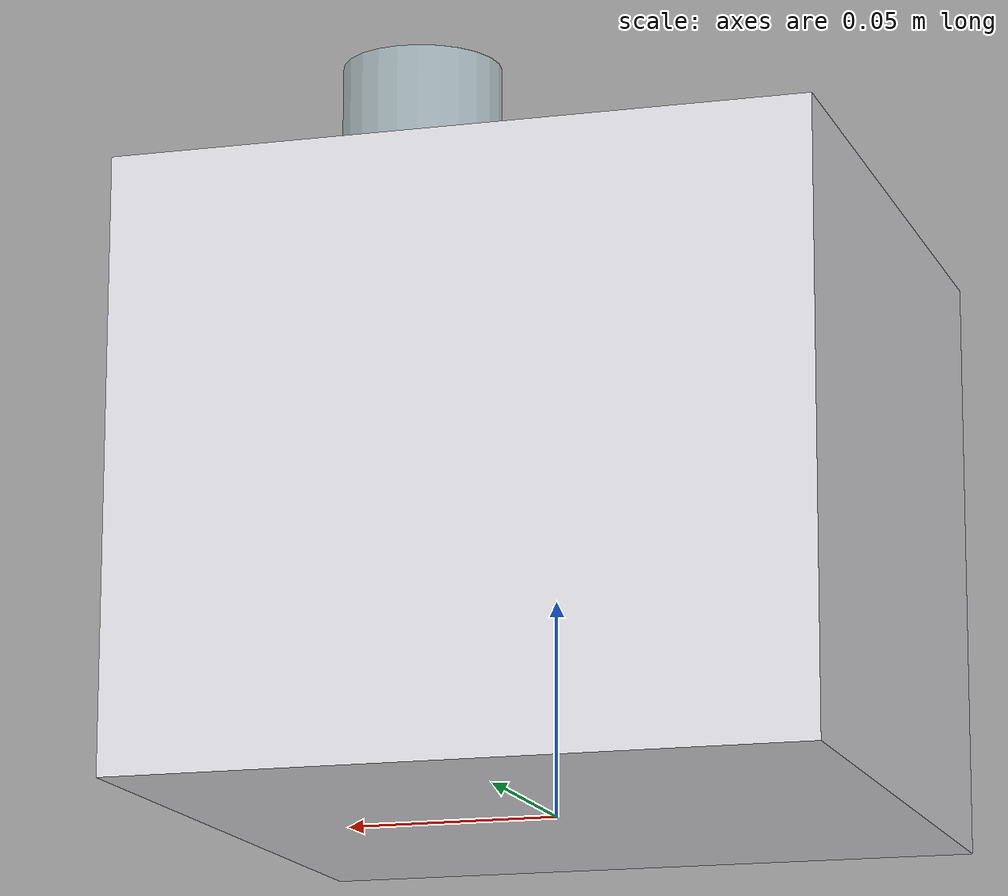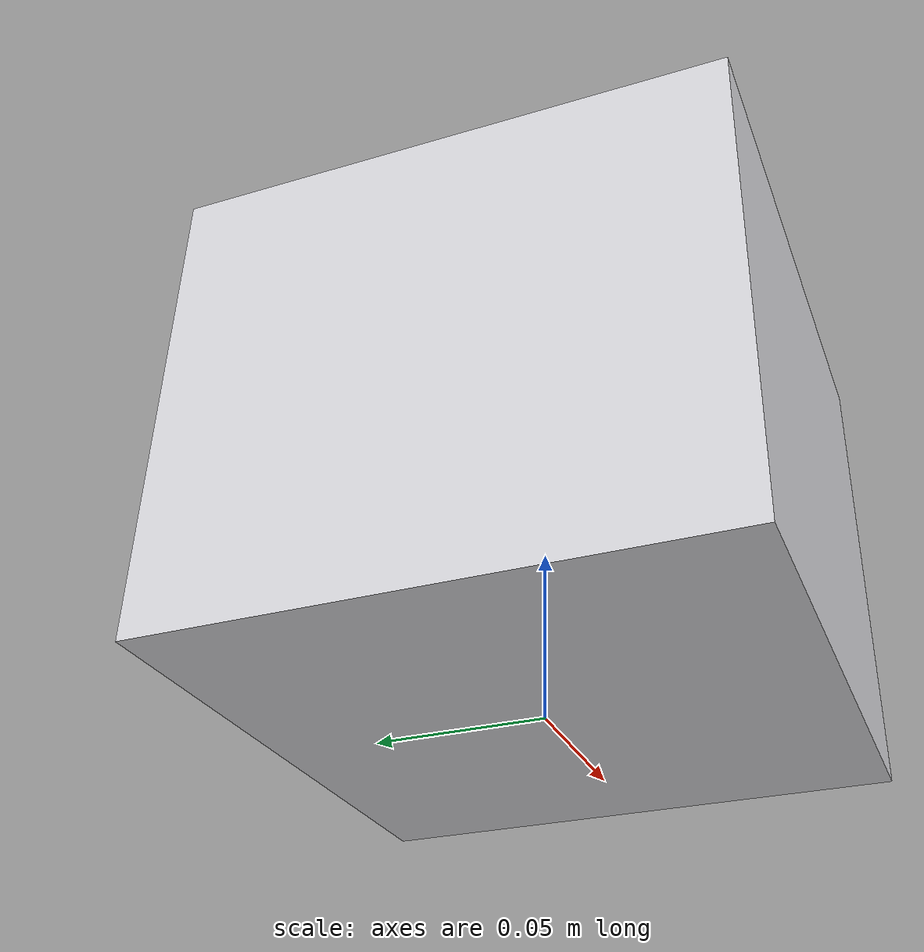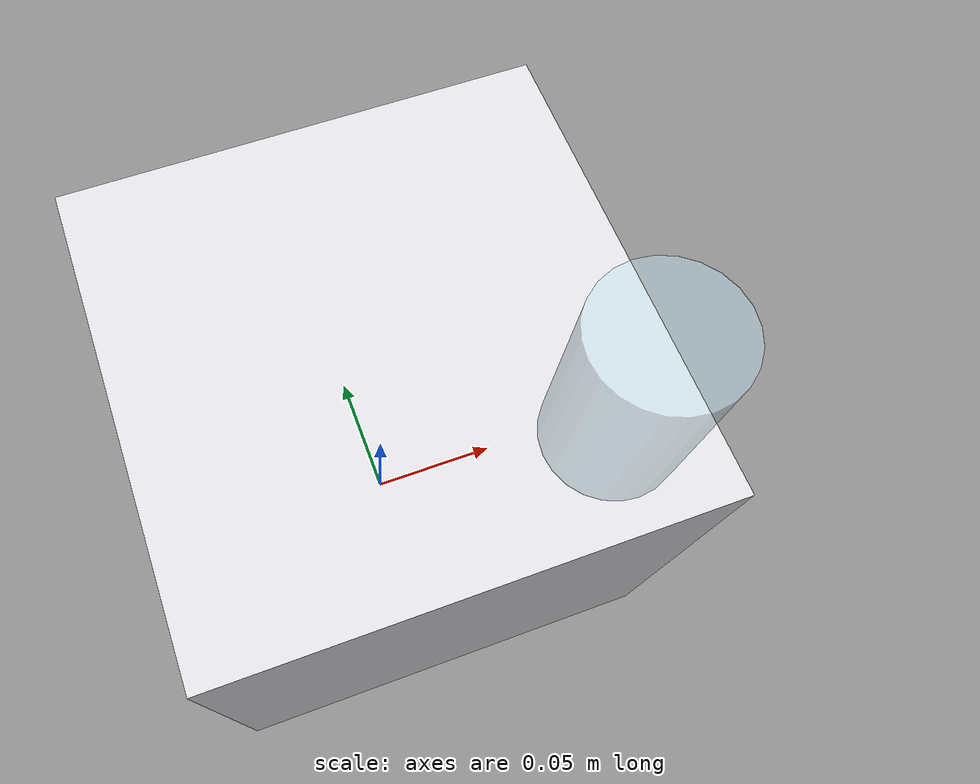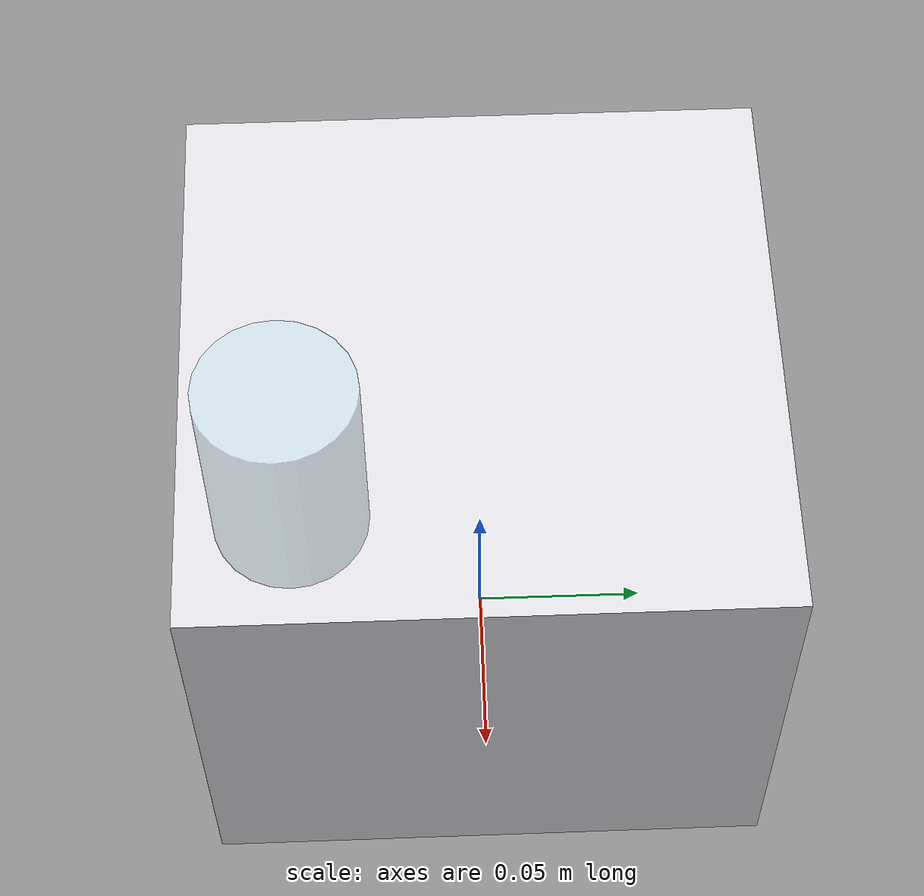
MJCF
<?xml version="1.0" encoding="utf-8"?>
<mujoco model="karl_fischer_titrator">
  <compiler angle="radian" autolimits="true"/>
  <default>
    <default class="body"><geom contype="1" conaffinity="1"/></default>
  </default>
  <worldbody>
    <body name="base">
      <geom type="box" size="0.08 0.08 0.07" pos="0 0 0.07" rgba="0.85 0.85 0.87 1" class="body"/>
      <geom type="box" size="0.024 0.004 0.0175" pos="-0.04 -0.07200000000000001 0.10500000000000001" rgba="0.6 0.9 0.9 0.7" class="body"/>
      <body name="burette_unit" pos="0.05 -0.05 0.17">
        <joint name="burette_unit_joint" type="slide" axis="0 0 1" range="-0.02 0.02" damping="1.0" frictionloss="0.5"/>
  <geom type="cylinder" size="0.02 0.03" pos="0 0 0" rgba="0.7 0.85 0.9 0.4" class="body"/>
      </body>
    </body>
  </worldbody>
</mujoco>
